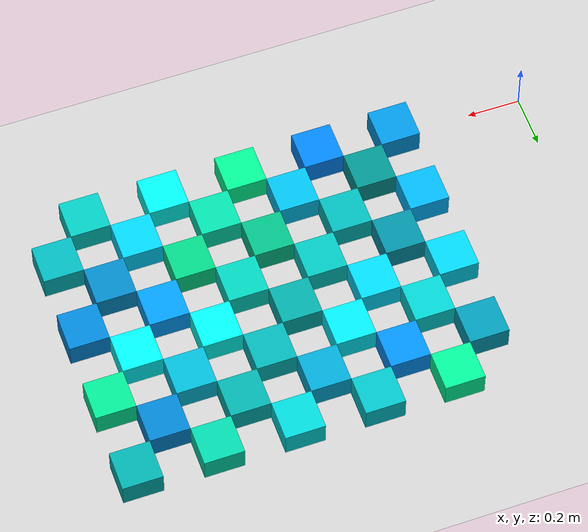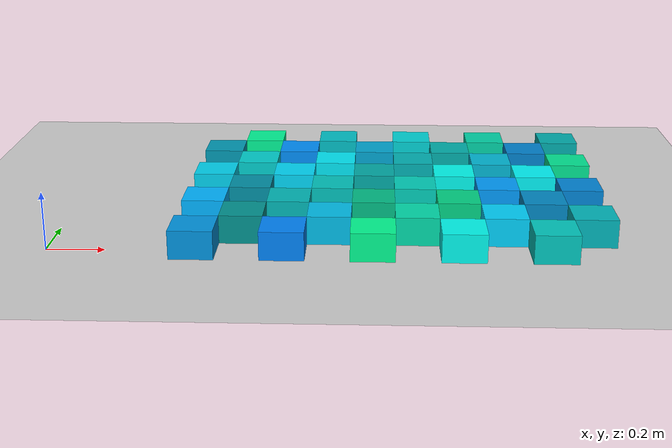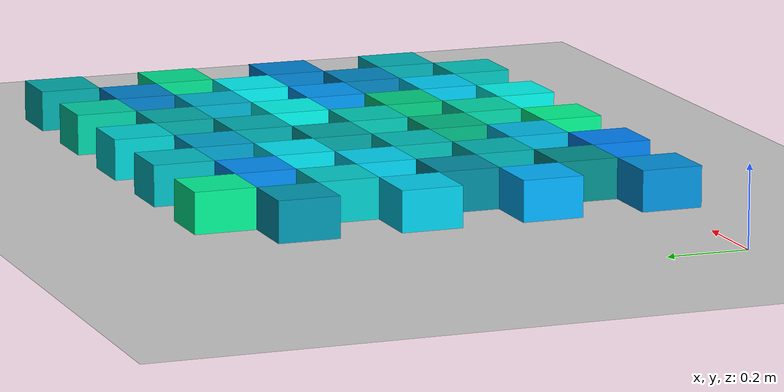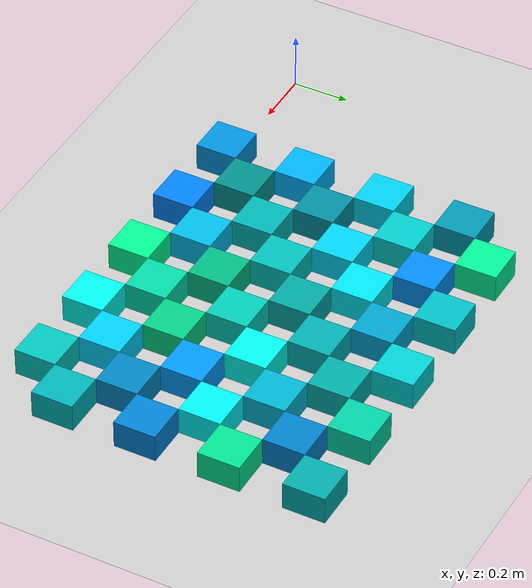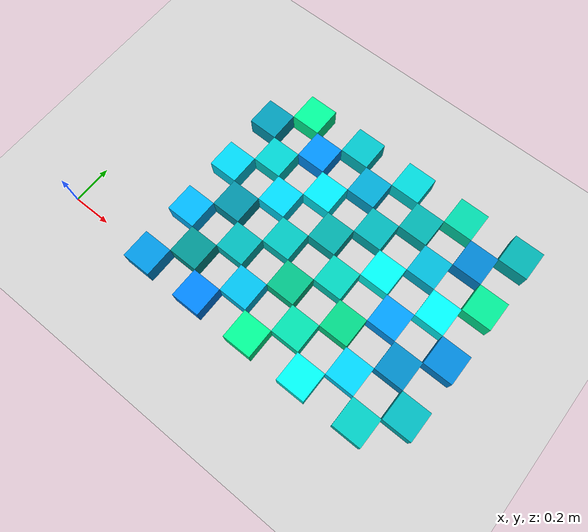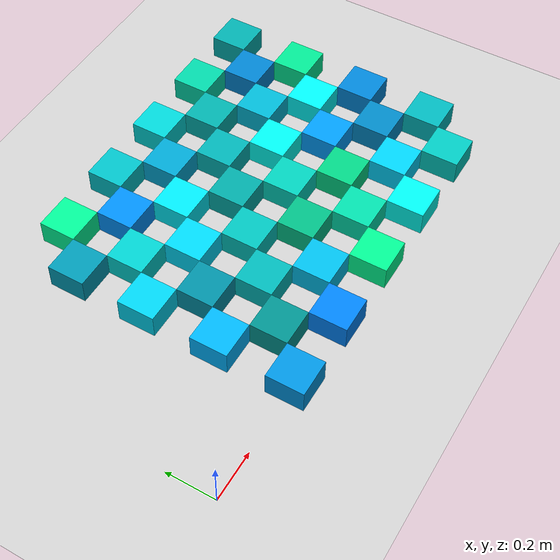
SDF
<sdf version="1.7">
  <world name="default">
    <physics type="ode">
    <max_step_size>0.001</max_step_size>
    <real_time_factor>1.0</real_time_factor>
    <real_time_update_rate>1000</real_time_update_rate>
    <gravity>0 0 -9.81</gravity>
        <ode>
            <solver>
            <type>quick</type>
            <iters>50</iters>
            <sor>1.3</sor>
            </solver>
            <constraints>
            <cfm>0.0</cfm>
            <erp>0.2</erp>
            <contact_max_correcting_vel>10.0</contact_max_correcting_vel>
            <contact_surface_layer>0.001</contact_surface_layer>
            </constraints>
        </ode>
    </physics>

    <scene>
    <sky>
        <clouds>
            <speed>12</speed>
        </clouds>
    </sky>
    </scene>
    <!-- A global light source -->
    <include>
        <uri>model://sun</uri>
    </include>
    <!-- A ground plane -->
    <include>
        <uri>model://ground_plane</uri>
    </include>
    <model name="static_environment">
  <static>true</static>
  <link name="region_0">
    <pose>0.5 0.0 0.05 0.0 0.0 0.0</pose>
    <collision name="region_0_collision">
      <geometry>
        <box>
          <size>0.15 0.15 0.1</size>
        </box>
      </geometry>
      <surface>
        <friction>
          <ode>
            <mu>0.8</mu>
            <mu2>0.8</mu2>
          </ode>
        </friction>
      </surface>
    </collision>
    <visual name="region_0_visual">
      <geometry>
        <box>
          <size>0.15 0.15 0.1</size>
        </box>
      </geometry>
      <material>
        <ambient>0.0 0.5770814211898362 0.8700248482577024 1.0</ambient>
        <diffuse>0.0 0.5770814211898362 0.8700248482577024 1.0</diffuse>
      </material>
    </visual>
  </link>
  <link name="region_1">
    <pose>0.8 0.0 0.05 0.0 0.0 0.0</pose>
    <collision name="region_1_collision">
      <geometry>
        <box>
          <size>0.15 0.15 0.1</size>
        </box>
      </geometry>
      <surface>
        <friction>
          <ode>
            <mu>0.8</mu>
            <mu2>0.8</mu2>
          </ode>
        </friction>
      </surface>
    </collision>
    <visual name="region_1_visual">
      <geometry>
        <box>
          <size>0.15 0.15 0.1</size>
        </box>
      </geometry>
      <material>
        <ambient>0.0 0.5072874812427098 0.9593735040499425 1.0</ambient>
        <diffuse>0.0 0.5072874812427098 0.9593735040499425 1.0</diffuse>
      </material>
    </visual>
  </link>
  <link name="region_2">
    <pose>1.1 0.0 0.05 0.0 0.0 0.0</pose>
    <collision name="region_2_collision">
      <geometry>
        <box>
          <size>0.15 0.15 0.1</size>
        </box>
      </geometry>
      <surface>
        <friction>
          <ode>
            <mu>0.8</mu>
            <mu2>0.8</mu2>
          </ode>
        </friction>
      </surface>
    </collision>
    <visual name="region_2_visual">
      <geometry>
        <box>
          <size>0.15 0.15 0.1</size>
        </box>
      </geometry>
      <material>
        <ambient>0.0 0.9784746681375585 0.5686046606780382 1.0</ambient>
        <diffuse>0.0 0.9784746681375585 0.5686046606780382 1.0</diffuse>
      </material>
    </visual>
  </link>
  <link name="region_3">
    <pose>1.4 0.0 0.05 0.0 0.0 0.0</pose>
    <collision name="region_3_collision">
      <geometry>
        <box>
          <size>0.15 0.15 0.1</size>
        </box>
      </geometry>
      <surface>
        <friction>
          <ode>
            <mu>0.8</mu>
            <mu2>0.8</mu2>
          </ode>
        </friction>
      </surface>
    </collision>
    <visual name="region_3_visual">
      <geometry>
        <box>
          <size>0.15 0.15 0.1</size>
        </box>
      </geometry>
      <material>
        <ambient>0.0 0.972112568026521 0.9263677705546425 1.0</ambient>
        <diffuse>0.0 0.972112568026521 0.9263677705546425 1.0</diffuse>
      </material>
    </visual>
  </link>
  <link name="region_4">
    <pose>1.7 0.0 0.05 0.0 0.0 0.0</pose>
    <collision name="region_4_collision">
      <geometry>
        <box>
          <size>0.15 0.15 0.1</size>
        </box>
      </geometry>
      <surface>
        <friction>
          <ode>
            <mu>0.8</mu>
            <mu2>0.8</mu2>
          </ode>
        </friction>
      </surface>
    </collision>
    <visual name="region_4_visual">
      <geometry>
        <box>
          <size>0.15 0.15 0.1</size>
        </box>
      </geometry>
      <material>
        <ambient>0.0 0.7760188166322832 0.7426887068313548 1.0</ambient>
        <diffuse>0.0 0.7760188166322832 0.7426887068313548 1.0</diffuse>
      </material>
    </visual>
  </link>
  <link name="region_5">
    <pose>0.65 0.15 0.05 0.0 0.0 0.0</pose>
    <collision name="region_5_collision">
      <geometry>
        <box>
          <size>0.15 0.15 0.1</size>
        </box>
      </geometry>
      <surface>
        <friction>
          <ode>
            <mu>0.8</mu>
            <mu2>0.8</mu2>
          </ode>
        </friction>
      </surface>
    </collision>
    <visual name="region_5_visual">
      <geometry>
        <box>
          <size>0.15 0.15 0.1</size>
        </box>
      </geometry>
      <material>
        <ambient>0.0 0.5676050891845584 0.558136508700845 1.0</ambient>
        <diffuse>0.0 0.5676050891845584 0.558136508700845 1.0</diffuse>
      </material>
    </visual>
  </link>
  <link name="region_6">
    <pose>0.95 0.15 0.05 0.0 0.0 0.0</pose>
    <collision name="region_6_collision">
      <geometry>
        <box>
          <size>0.15 0.15 0.1</size>
        </box>
      </geometry>
      <surface>
        <friction>
          <ode>
            <mu>0.8</mu>
            <mu2>0.8</mu2>
          </ode>
        </friction>
      </surface>
    </collision>
    <visual name="region_6_visual">
      <geometry>
        <box>
          <size>0.15 0.15 0.1</size>
        </box>
      </geometry>
      <material>
        <ambient>0.0 0.735614889125007 0.9080841490230134 1.0</ambient>
        <diffuse>0.0 0.735614889125007 0.9080841490230134 1.0</diffuse>
      </material>
    </visual>
  </link>
  <link name="region_7">
    <pose>1.25 0.15 0.05 0.0 0.0 0.0</pose>
    <collision name="region_7_collision">
      <geometry>
        <box>
          <size>0.15 0.15 0.1</size>
        </box>
      </geometry>
      <surface>
        <friction>
          <ode>
            <mu>0.8</mu>
            <mu2>0.8</mu2>
          </ode>
        </friction>
      </surface>
    </collision>
    <visual name="region_7_visual">
      <geometry>
        <box>
          <size>0.15 0.15 0.1</size>
        </box>
      </geometry>
      <material>
        <ambient>0.0 0.8513111776276232 0.6637847381317115 1.0</ambient>
        <diffuse>0.0 0.8513111776276232 0.6637847381317115 1.0</diffuse>
      </material>
    </visual>
  </link>
  <link name="region_8">
    <pose>1.55 0.15 0.05 0.0 0.0 0.0</pose>
    <collision name="region_8_collision">
      <geometry>
        <box>
          <size>0.15 0.15 0.1</size>
        </box>
      </geometry>
      <surface>
        <friction>
          <ode>
            <mu>0.8</mu>
            <mu2>0.8</mu2>
          </ode>
        </friction>
      </surface>
    </collision>
    <visual name="region_8_visual">
      <geometry>
        <box>
          <size>0.15 0.15 0.1</size>
        </box>
      </geometry>
      <material>
        <ambient>0.0 0.8122910558676761 0.9751567623497627 1.0</ambient>
        <diffuse>0.0 0.8122910558676761 0.9751567623497627 1.0</diffuse>
      </material>
    </visual>
  </link>
  <link name="region_9">
    <pose>1.8499999999999999 0.15 0.05 0.0 0.0 0.0</pose>
    <collision name="region_9_collision">
      <geometry>
        <box>
          <size>0.15 0.15 0.1</size>
        </box>
      </geometry>
      <surface>
        <friction>
          <ode>
            <mu>0.8</mu>
            <mu2>0.8</mu2>
          </ode>
        </friction>
      </surface>
    </collision>
    <visual name="region_9_visual">
      <geometry>
        <box>
          <size>0.15 0.15 0.1</size>
        </box>
      </geometry>
      <material>
        <ambient>0.0 0.7033201509033309 0.7256542057106572 1.0</ambient>
        <diffuse>0.0 0.7033201509033309 0.7256542057106572 1.0</diffuse>
      </material>
    </visual>
  </link>
  <link name="region_10">
    <pose>0.5 0.3 0.05 0.0 0.0 0.0</pose>
    <collision name="region_10_collision">
      <geometry>
        <box>
          <size>0.15 0.15 0.1</size>
        </box>
      </geometry>
      <surface>
        <friction>
          <ode>
            <mu>0.8</mu>
            <mu2>0.8</mu2>
          </ode>
        </friction>
      </surface>
    </collision>
    <visual name="region_10_visual">
      <geometry>
        <box>
          <size>0.15 0.15 0.1</size>
        </box>
      </geometry>
      <material>
        <ambient>0.0 0.7003158136808367 0.9975690801692793 1.0</ambient>
        <diffuse>0.0 0.7003158136808367 0.9975690801692793 1.0</diffuse>
      </material>
    </visual>
  </link>
  <link name="region_11">
    <pose>0.8 0.3 0.05 0.0 0.0 0.0</pose>
    <collision name="region_11_collision">
      <geometry>
        <box>
          <size>0.15 0.15 0.1</size>
        </box>
      </geometry>
      <surface>
        <friction>
          <ode>
            <mu>0.8</mu>
            <mu2>0.8</mu2>
          </ode>
        </friction>
      </surface>
    </collision>
    <visual name="region_11_visual">
      <geometry>
        <box>
          <size>0.15 0.15 0.1</size>
        </box>
      </geometry>
      <material>
        <ambient>0.0 0.709625135129553 0.7120262232754994 1.0</ambient>
        <diffuse>0.0 0.709625135129553 0.7120262232754994 1.0</diffuse>
      </material>
    </visual>
  </link>
  <link name="region_12">
    <pose>1.1 0.3 0.05 0.0 0.0 0.0</pose>
    <collision name="region_12_collision">
      <geometry>
        <box>
          <size>0.15 0.15 0.1</size>
        </box>
      </geometry>
      <surface>
        <friction>
          <ode>
            <mu>0.8</mu>
            <mu2>0.8</mu2>
          </ode>
        </friction>
      </surface>
    </collision>
    <visual name="region_12_visual">
      <geometry>
        <box>
          <size>0.15 0.15 0.1</size>
        </box>
      </geometry>
      <material>
        <ambient>0.0 0.7327540500862555 0.5175841307354023 1.0</ambient>
        <diffuse>0.0 0.7327540500862555 0.5175841307354023 1.0</diffuse>
      </material>
    </visual>
  </link>
  <link name="region_13">
    <pose>1.4 0.3 0.05 0.0 0.0 0.0</pose>
    <collision name="region_13_collision">
      <geometry>
        <box>
          <size>0.15 0.15 0.1</size>
        </box>
      </geometry>
      <surface>
        <friction>
          <ode>
            <mu>0.8</mu>
            <mu2>0.8</mu2>
          </ode>
        </friction>
      </surface>
    </collision>
    <visual name="region_13_visual">
      <geometry>
        <box>
          <size>0.15 0.15 0.1</size>
        </box>
      </geometry>
      <material>
        <ambient>0.0 0.8180999969164338 0.5139538944307662 1.0</ambient>
        <diffuse>0.0 0.8180999969164338 0.5139538944307662 1.0</diffuse>
      </material>
    </visual>
  </link>
  <link name="region_14">
    <pose>1.7 0.3 0.05 0.0 0.0 0.0</pose>
    <collision name="region_14_collision">
      <geometry>
        <box>
          <size>0.15 0.15 0.1</size>
        </box>
      </geometry>
      <surface>
        <friction>
          <ode>
            <mu>0.8</mu>
            <mu2>0.8</mu2>
          </ode>
        </friction>
      </surface>
    </collision>
    <visual name="region_14_visual">
      <geometry>
        <box>
          <size>0.15 0.15 0.1</size>
        </box>
      </geometry>
      <material>
        <ambient>0.0 0.5275099966701 0.761623035389146 1.0</ambient>
        <diffuse>0.0 0.5275099966701 0.761623035389146 1.0</diffuse>
      </material>
    </visual>
  </link>
  <link name="region_15">
    <pose>0.65 0.44999999999999996 0.05 0.0 0.0 0.0</pose>
    <collision name="region_15_collision">
      <geometry>
        <box>
          <size>0.15 0.15 0.1</size>
        </box>
      </geometry>
      <surface>
        <friction>
          <ode>
            <mu>0.8</mu>
            <mu2>0.8</mu2>
          </ode>
        </friction>
      </surface>
    </collision>
    <visual name="region_15_visual">
      <geometry>
        <box>
          <size>0.15 0.15 0.1</size>
        </box>
      </geometry>
      <material>
        <ambient>0.0 0.5568008597699086 0.6385586072125982 1.0</ambient>
        <diffuse>0.0 0.5568008597699086 0.6385586072125982 1.0</diffuse>
      </material>
    </visual>
  </link>
  <link name="region_16">
    <pose>0.95 0.44999999999999996 0.05 0.0 0.0 0.0</pose>
    <collision name="region_16_collision">
      <geometry>
        <box>
          <size>0.15 0.15 0.1</size>
        </box>
      </geometry>
      <surface>
        <friction>
          <ode>
            <mu>0.8</mu>
            <mu2>0.8</mu2>
          </ode>
        </friction>
      </surface>
    </collision>
    <visual name="region_16_visual">
      <geometry>
        <box>
          <size>0.15 0.15 0.1</size>
        </box>
      </geometry>
      <material>
        <ambient>0.0 0.7532780378340473 0.7307201300329775 1.0</ambient>
        <diffuse>0.0 0.7532780378340473 0.7307201300329775 1.0</diffuse>
      </material>
    </visual>
  </link>
  <link name="region_17">
    <pose>1.25 0.44999999999999996 0.05 0.0 0.0 0.0</pose>
    <collision name="region_17_collision">
      <geometry>
        <box>
          <size>0.15 0.15 0.1</size>
        </box>
      </geometry>
      <surface>
        <friction>
          <ode>
            <mu>0.8</mu>
            <mu2>0.8</mu2>
          </ode>
        </friction>
      </surface>
    </collision>
    <visual name="region_17_visual">
      <geometry>
        <box>
          <size>0.15 0.15 0.1</size>
        </box>
      </geometry>
      <material>
        <ambient>0.0 0.8016778015837769 0.7219359280956344 1.0</ambient>
        <diffuse>0.0 0.8016778015837769 0.7219359280956344 1.0</diffuse>
      </material>
    </visual>
  </link>
  <link name="region_18">
    <pose>1.55 0.44999999999999996 0.05 0.0 0.0 0.0</pose>
    <collision name="region_18_collision">
      <geometry>
        <box>
          <size>0.15 0.15 0.1</size>
        </box>
      </geometry>
      <surface>
        <friction>
          <ode>
            <mu>0.8</mu>
            <mu2>0.8</mu2>
          </ode>
        </friction>
      </surface>
    </collision>
    <visual name="region_18_visual">
      <geometry>
        <box>
          <size>0.15 0.15 0.1</size>
        </box>
      </geometry>
      <material>
        <ambient>0.0 0.6042502442300901 0.9722907310781624 1.0</ambient>
        <diffuse>0.0 0.6042502442300901 0.9722907310781624 1.0</diffuse>
      </material>
    </visual>
  </link>
  <link name="region_19">
    <pose>1.8499999999999999 0.44999999999999996 0.05 0.0 0.0 0.0</pose>
    <collision name="region_19_collision">
      <geometry>
        <box>
          <size>0.15 0.15 0.1</size>
        </box>
      </geometry>
      <surface>
        <friction>
          <ode>
            <mu>0.8</mu>
            <mu2>0.8</mu2>
          </ode>
        </friction>
      </surface>
    </collision>
    <visual name="region_19_visual">
      <geometry>
        <box>
          <size>0.15 0.15 0.1</size>
        </box>
      </geometry>
      <material>
        <ambient>0.0 0.5155755354258832 0.8326287162653946 1.0</ambient>
        <diffuse>0.0 0.5155755354258832 0.8326287162653946 1.0</diffuse>
      </material>
    </visual>
  </link>
  <link name="region_20">
    <pose>0.5 0.6 0.05 0.0 0.0 0.0</pose>
    <collision name="region_20_collision">
      <geometry>
        <box>
          <size>0.15 0.15 0.1</size>
        </box>
      </geometry>
      <surface>
        <friction>
          <ode>
            <mu>0.8</mu>
            <mu2>0.8</mu2>
          </ode>
        </friction>
      </surface>
    </collision>
    <visual name="region_20_visual">
      <geometry>
        <box>
          <size>0.15 0.15 0.1</size>
        </box>
      </geometry>
      <material>
        <ambient>0.0 0.8186927475704847 0.9312325811488076 1.0</ambient>
        <diffuse>0.0 0.8186927475704847 0.9312325811488076 1.0</diffuse>
      </material>
    </visual>
  </link>
  <link name="region_21">
    <pose>0.8 0.6 0.05 0.0 0.0 0.0</pose>
    <collision name="region_21_collision">
      <geometry>
        <box>
          <size>0.15 0.15 0.1</size>
        </box>
      </geometry>
      <surface>
        <friction>
          <ode>
            <mu>0.8</mu>
            <mu2>0.8</mu2>
          </ode>
        </friction>
      </surface>
    </collision>
    <visual name="region_21_visual">
      <geometry>
        <box>
          <size>0.15 0.15 0.1</size>
        </box>
      </geometry>
      <material>
        <ambient>0.0 0.8349788162178775 0.9621653498159959 1.0</ambient>
        <diffuse>0.0 0.8349788162178775 0.9621653498159959 1.0</diffuse>
      </material>
    </visual>
  </link>
  <link name="region_22">
    <pose>1.1 0.6 0.05 0.0 0.0 0.0</pose>
    <collision name="region_22_collision">
      <geometry>
        <box>
          <size>0.15 0.15 0.1</size>
        </box>
      </geometry>
      <surface>
        <friction>
          <ode>
            <mu>0.8</mu>
            <mu2>0.8</mu2>
          </ode>
        </friction>
      </surface>
    </collision>
    <visual name="region_22_visual">
      <geometry>
        <box>
          <size>0.15 0.15 0.1</size>
        </box>
      </geometry>
      <material>
        <ambient>0.0 0.6597381554667906 0.6457283425033264 1.0</ambient>
        <diffuse>0.0 0.6597381554667906 0.6457283425033264 1.0</diffuse>
      </material>
    </visual>
  </link>
  <link name="region_23">
    <pose>1.4 0.6 0.05 0.0 0.0 0.0</pose>
    <collision name="region_23_collision">
      <geometry>
        <box>
          <size>0.15 0.15 0.1</size>
        </box>
      </geometry>
      <surface>
        <friction>
          <ode>
            <mu>0.8</mu>
            <mu2>0.8</mu2>
          </ode>
        </friction>
      </surface>
    </collision>
    <visual name="region_23_visual">
      <geometry>
        <box>
          <size>0.15 0.15 0.1</size>
        </box>
      </geometry>
      <material>
        <ambient>0.0 0.9732779111814016 0.9285952794159718 1.0</ambient>
        <diffuse>0.0 0.9732779111814016 0.9285952794159718 1.0</diffuse>
      </material>
    </visual>
  </link>
  <link name="region_24">
    <pose>1.7 0.6 0.05 0.0 0.0 0.0</pose>
    <collision name="region_24_collision">
      <geometry>
        <box>
          <size>0.15 0.15 0.1</size>
        </box>
      </geometry>
      <surface>
        <friction>
          <ode>
            <mu>0.8</mu>
            <mu2>0.8</mu2>
          </ode>
        </friction>
      </surface>
    </collision>
    <visual name="region_24_visual">
      <geometry>
        <box>
          <size>0.15 0.15 0.1</size>
        </box>
      </geometry>
      <material>
        <ambient>0.0 0.9500517498284913 0.9599324354811617 1.0</ambient>
        <diffuse>0.0 0.9500517498284913 0.9599324354811617 1.0</diffuse>
      </material>
    </visual>
  </link>
  <link name="region_25">
    <pose>0.65 0.75 0.05 0.0 0.0 0.0</pose>
    <collision name="region_25_collision">
      <geometry>
        <box>
          <size>0.15 0.15 0.1</size>
        </box>
      </geometry>
      <surface>
        <friction>
          <ode>
            <mu>0.8</mu>
            <mu2>0.8</mu2>
          </ode>
        </friction>
      </surface>
    </collision>
    <visual name="region_25_visual">
      <geometry>
        <box>
          <size>0.15 0.15 0.1</size>
        </box>
      </geometry>
      <material>
        <ambient>0.0 0.8054035277522047 0.7998095941986689 1.0</ambient>
        <diffuse>0.0 0.8054035277522047 0.7998095941986689 1.0</diffuse>
      </material>
    </visual>
  </link>
  <link name="region_26">
    <pose>0.95 0.75 0.05 0.0 0.0 0.0</pose>
    <collision name="region_26_collision">
      <geometry>
        <box>
          <size>0.15 0.15 0.1</size>
        </box>
      </geometry>
      <surface>
        <friction>
          <ode>
            <mu>0.8</mu>
            <mu2>0.8</mu2>
          </ode>
        </friction>
      </surface>
    </collision>
    <visual name="region_26_visual">
      <geometry>
        <box>
          <size>0.15 0.15 0.1</size>
        </box>
      </geometry>
      <material>
        <ambient>0.0 0.9003671171077637 0.9557170250666596 1.0</ambient>
        <diffuse>0.0 0.9003671171077637 0.9557170250666596 1.0</diffuse>
      </material>
    </visual>
  </link>
  <link name="region_27">
    <pose>1.25 0.75 0.05 0.0 0.0 0.0</pose>
    <collision name="region_27_collision">
      <geometry>
        <box>
          <size>0.15 0.15 0.1</size>
        </box>
      </geometry>
      <surface>
        <friction>
          <ode>
            <mu>0.8</mu>
            <mu2>0.8</mu2>
          </ode>
        </friction>
      </surface>
    </collision>
    <visual name="region_27_visual">
      <geometry>
        <box>
          <size>0.15 0.15 0.1</size>
        </box>
      </geometry>
      <material>
        <ambient>0.0 0.6887203911803224 0.7014236050863367 1.0</ambient>
        <diffuse>0.0 0.6887203911803224 0.7014236050863367 1.0</diffuse>
      </material>
    </visual>
  </link>
  <link name="region_28">
    <pose>1.55 0.75 0.05 0.0 0.0 0.0</pose>
    <collision name="region_28_collision">
      <geometry>
        <box>
          <size>0.15 0.15 0.1</size>
        </box>
      </geometry>
      <surface>
        <friction>
          <ode>
            <mu>0.8</mu>
            <mu2>0.8</mu2>
          </ode>
        </friction>
      </surface>
    </collision>
    <visual name="region_28_visual">
      <geometry>
        <box>
          <size>0.15 0.15 0.1</size>
        </box>
      </geometry>
      <material>
        <ambient>0.0 0.7095074137418753 0.8239795866696307 1.0</ambient>
        <diffuse>0.0 0.7095074137418753 0.8239795866696307 1.0</diffuse>
      </material>
    </visual>
  </link>
  <link name="region_29">
    <pose>1.8499999999999999 0.75 0.05 0.0 0.0 0.0</pose>
    <collision name="region_29_collision">
      <geometry>
        <box>
          <size>0.15 0.15 0.1</size>
        </box>
      </geometry>
      <surface>
        <friction>
          <ode>
            <mu>0.8</mu>
            <mu2>0.8</mu2>
          </ode>
        </friction>
      </surface>
    </collision>
    <visual name="region_29_visual">
      <geometry>
        <box>
          <size>0.15 0.15 0.1</size>
        </box>
      </geometry>
      <material>
        <ambient>0.0 0.8892367169296723 0.5677175672838054 1.0</ambient>
        <diffuse>0.0 0.8892367169296723 0.5677175672838054 1.0</diffuse>
      </material>
    </visual>
  </link>
  <link name="region_30">
    <pose>0.5 0.9 0.05 0.0 0.0 0.0</pose>
    <collision name="region_30_collision">
      <geometry>
        <box>
          <size>0.15 0.15 0.1</size>
        </box>
      </geometry>
      <surface>
        <friction>
          <ode>
            <mu>0.8</mu>
            <mu2>0.8</mu2>
          </ode>
        </friction>
      </surface>
    </collision>
    <visual name="region_30_visual">
      <geometry>
        <box>
          <size>0.15 0.15 0.1</size>
        </box>
      </geometry>
      <material>
        <ambient>0.0 0.5958553861277779 0.7012945739479823 1.0</ambient>
        <diffuse>0.0 0.5958553861277779 0.7012945739479823 1.0</diffuse>
      </material>
    </visual>
  </link>
  <link name="region_31">
    <pose>0.8 0.9 0.05 0.0 0.0 0.0</pose>
    <collision name="region_31_collision">
      <geometry>
        <box>
          <size>0.15 0.15 0.1</size>
        </box>
      </geometry>
      <surface>
        <friction>
          <ode>
            <mu>0.8</mu>
            <mu2>0.8</mu2>
          </ode>
        </friction>
      </surface>
    </collision>
    <visual name="region_31_visual">
      <geometry>
        <box>
          <size>0.15 0.15 0.1</size>
        </box>
      </geometry>
      <material>
        <ambient>0.0 0.5547427106657594 0.9653380071909432 1.0</ambient>
        <diffuse>0.0 0.5547427106657594 0.9653380071909432 1.0</diffuse>
      </material>
    </visual>
  </link>
  <link name="region_32">
    <pose>1.1 0.9 0.05 0.0 0.0 0.0</pose>
    <collision name="region_32_collision">
      <geometry>
        <box>
          <size>0.15 0.15 0.1</size>
        </box>
      </geometry>
      <surface>
        <friction>
          <ode>
            <mu>0.8</mu>
            <mu2>0.8</mu2>
          </ode>
        </friction>
      </surface>
    </collision>
    <visual name="region_32_visual">
      <geometry>
        <box>
          <size>0.15 0.15 0.1</size>
        </box>
      </geometry>
      <material>
        <ambient>0.0 0.6450609682939136 0.8132646959612851 1.0</ambient>
        <diffuse>0.0 0.6450609682939136 0.8132646959612851 1.0</diffuse>
      </material>
    </visual>
  </link>
  <link name="region_33">
    <pose>1.4 0.9 0.05 0.0 0.0 0.0</pose>
    <collision name="region_33_collision">
      <geometry>
        <box>
          <size>0.15 0.15 0.1</size>
        </box>
      </geometry>
      <surface>
        <friction>
          <ode>
            <mu>0.8</mu>
            <mu2>0.8</mu2>
          </ode>
        </friction>
      </surface>
    </collision>
    <visual name="region_33_visual">
      <geometry>
        <box>
          <size>0.15 0.15 0.1</size>
        </box>
      </geometry>
      <material>
        <ambient>0.0 0.6777214624005113 0.6673620387383863 1.0</ambient>
        <diffuse>0.0 0.6777214624005113 0.6673620387383863 1.0</diffuse>
      </material>
    </visual>
  </link>
  <link name="region_34">
    <pose>1.7 0.9 0.05 0.0 0.0 0.0</pose>
    <collision name="region_34_collision">
      <geometry>
        <box>
          <size>0.15 0.15 0.1</size>
        </box>
      </geometry>
      <surface>
        <friction>
          <ode>
            <mu>0.8</mu>
            <mu2>0.8</mu2>
          </ode>
        </friction>
      </surface>
    </collision>
    <visual name="region_34_visual">
      <geometry>
        <box>
          <size>0.15 0.15 0.1</size>
        </box>
      </geometry>
      <material>
        <ambient>0.0 0.5052192010473606 0.7987294023195617 1.0</ambient>
        <diffuse>0.0 0.5052192010473606 0.7987294023195617 1.0</diffuse>
      </material>
    </visual>
  </link>
  <link name="region_35">
    <pose>0.65 1.05 0.05 0.0 0.0 0.0</pose>
    <collision name="region_35_collision">
      <geometry>
        <box>
          <size>0.15 0.15 0.1</size>
        </box>
      </geometry>
      <surface>
        <friction>
          <ode>
            <mu>0.8</mu>
            <mu2>0.8</mu2>
          </ode>
        </friction>
      </surface>
    </collision>
    <visual name="region_35_visual">
      <geometry>
        <box>
          <size>0.15 0.15 0.1</size>
        </box>
      </geometry>
      <material>
        <ambient>0.0 0.9563919970854122 0.5849491304659428 1.0</ambient>
        <diffuse>0.0 0.9563919970854122 0.5849491304659428 1.0</diffuse>
      </material>
    </visual>
  </link>
  <link name="region_36">
    <pose>0.95 1.05 0.05 0.0 0.0 0.0</pose>
    <collision name="region_36_collision">
      <geometry>
        <box>
          <size>0.15 0.15 0.1</size>
        </box>
      </geometry>
      <surface>
        <friction>
          <ode>
            <mu>0.8</mu>
            <mu2>0.8</mu2>
          </ode>
        </friction>
      </surface>
    </collision>
    <visual name="region_36_visual">
      <geometry>
        <box>
          <size>0.15 0.15 0.1</size>
        </box>
      </geometry>
      <material>
        <ambient>0.0 0.7454774849124914 0.7719717047842568 1.0</ambient>
        <diffuse>0.0 0.7454774849124914 0.7719717047842568 1.0</diffuse>
      </material>
    </visual>
  </link>
  <link name="region_37">
    <pose>1.25 1.05 0.05 0.0 0.0 0.0</pose>
    <collision name="region_37_collision">
      <geometry>
        <box>
          <size>0.15 0.15 0.1</size>
        </box>
      </geometry>
      <surface>
        <friction>
          <ode>
            <mu>0.8</mu>
            <mu2>0.8</mu2>
          </ode>
        </friction>
      </surface>
    </collision>
    <visual name="region_37_visual">
      <geometry>
        <box>
          <size>0.15 0.15 0.1</size>
        </box>
      </geometry>
      <material>
        <ambient>0.0 0.8218665078826013 0.8296716753573353 1.0</ambient>
        <diffuse>0.0 0.8218665078826013 0.8296716753573353 1.0</diffuse>
      </material>
    </visual>
  </link>
  <link name="region_38">
    <pose>1.55 1.05 0.05 0.0 0.0 0.0</pose>
    <collision name="region_38_collision">
      <geometry>
        <box>
          <size>0.15 0.15 0.1</size>
        </box>
      </geometry>
      <surface>
        <friction>
          <ode>
            <mu>0.8</mu>
            <mu2>0.8</mu2>
          </ode>
        </friction>
      </surface>
    </collision>
    <visual name="region_38_visual">
      <geometry>
        <box>
          <size>0.15 0.15 0.1</size>
        </box>
      </geometry>
      <material>
        <ambient>0.0 0.8207237978078082 0.6491155146158184 1.0</ambient>
        <diffuse>0.0 0.8207237978078082 0.6491155146158184 1.0</diffuse>
      </material>
    </visual>
  </link>
  <link name="region_39">
    <pose>1.8499999999999999 1.05 0.05 0.0 0.0 0.0</pose>
    <collision name="region_39_collision">
      <geometry>
        <box>
          <size>0.15 0.15 0.1</size>
        </box>
      </geometry>
      <surface>
        <friction>
          <ode>
            <mu>0.8</mu>
            <mu2>0.8</mu2>
          </ode>
        </friction>
      </surface>
    </collision>
    <visual name="region_39_visual">
      <geometry>
        <box>
          <size>0.15 0.15 0.1</size>
        </box>
      </geometry>
      <material>
        <ambient>0.0 0.6722974701399591 0.6717225003256375 1.0</ambient>
        <diffuse>0.0 0.6722974701399591 0.6717225003256375 1.0</diffuse>
      </material>
    </visual>
  </link>
</model>
  </world>
</sdf>
